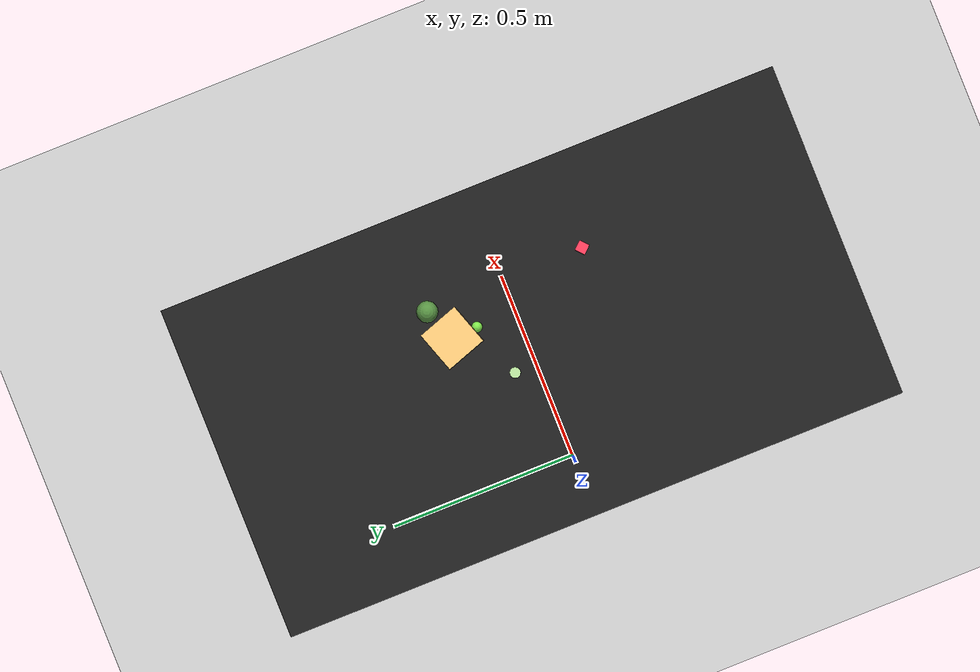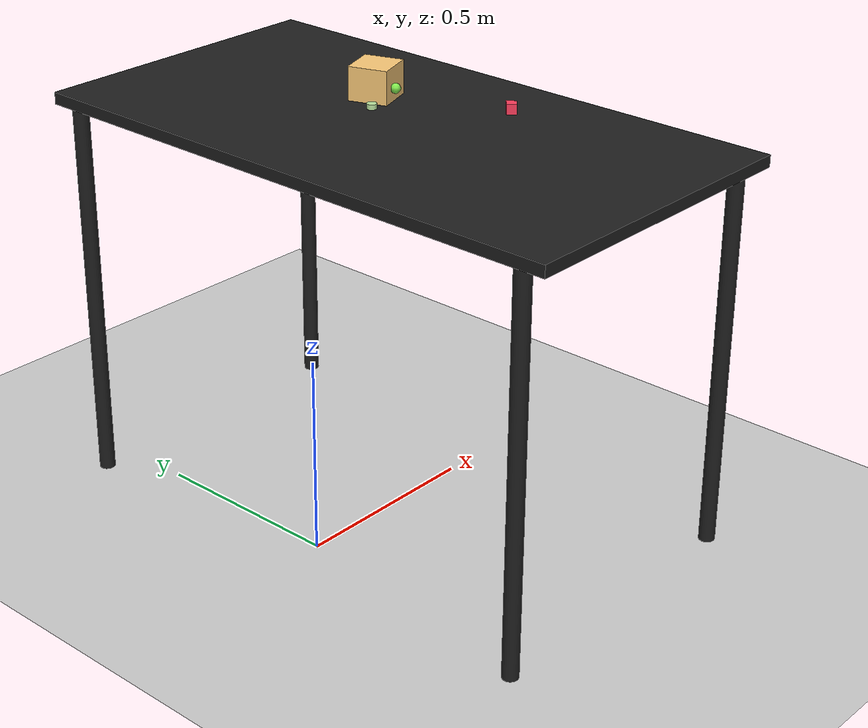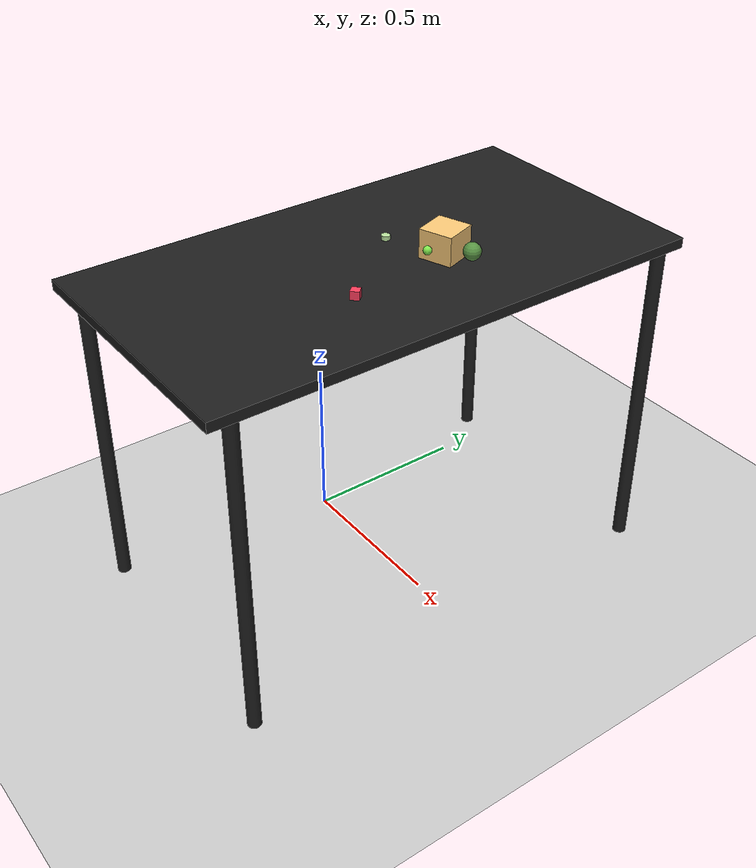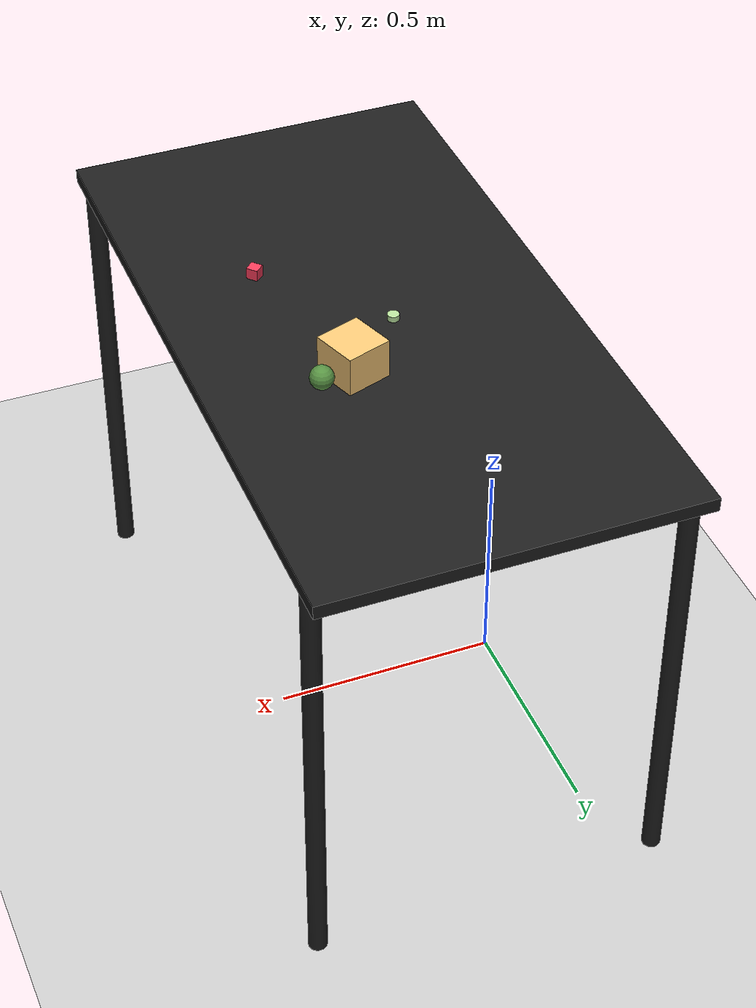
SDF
<?xml version="1.0" ?>
<sdf version="1.6">
  <world name="arm_world">
    <plugin filename="gz-sim-physics-system" name="gz::sim::systems::Physics">
      <engine>
        <filename>libgz-physics-bullet-featherstone-plugin.so</filename>
      </engine>
    </plugin>
    <plugin filename="gz-sim-user-commands-system" name="gz::sim::systems::UserCommands"/>
    <plugin filename="gz-sim-scene-broadcaster-system" name="gz::sim::systems::SceneBroadcaster"/>
    <plugin filename="gz-sim-sensors-system" name="gz::sim::systems::Sensors">
      <render_engine>ogre2</render_engine>
    </plugin>
    <gravity>0.0 0.0 -9.8</gravity>
    <scene>
      <shadows>false</shadows>
    </scene>
    <gui>
      <camera name="user_camera">
        <pose>0.75 -0.75 1.4 0 0.29 2.21</pose>
      </camera>
    </gui>
    <include>
      <uri>https://fuel.gazebosim.org/1.0/OpenRobotics/models/Sun</uri>
    </include>
    <model name="table">
      <static>true</static>
      <include>
        <uri>model://table</uri>
      </include>
      <pose>0.29 0 0 0 0 1.5708</pose>
    </model>
    <model name="ground_plane">
      <static>true</static>
      <link name="link">
        <collision name="collision">
          <geometry>
            <plane>
              <normal>0 0 1</normal>
            </plane>
          </geometry>
          <surface>
            <friction>
              <ode>
                <mu>1.0</mu>
                <mu2>1.0</mu2>
              </ode>
            </friction>
          </surface>
        </collision>
        <visual name="visual">
          <geometry>
            <plane>
              <normal>0 0 1</normal>
              <size>100 100</size>
            </plane>
          </geometry>
          <material>
            <ambient>0.8 0.8 0.8 1</ambient>
            <diffuse>0.8 0.8 0.8 1</diffuse>
            <specular>0.8 0.8 0.8 1</specular>
          </material>
        </visual>
      </link>
    </model>
    <model name="cube_l_0">
      <pose>0.385 0.155 1.05 0 0 0.33</pose>
      <link name="cube_l_0_link">
        <collision name="cube_l_0_collision">
          <geometry>
            <box>
              <size>0.1 0.1 0.1</size>
            </box>
          </geometry>
        </collision>
        <visual name="cube_l_0_visual">
          <geometry>
            <box>
              <size>0.1 0.1 0.1</size>
            </box>
          </geometry>
          <material>
            <ambient>0.98 0.79 0.47 1</ambient>
            <diffuse>0.98 0.79 0.47 1</diffuse>
          </material>
        </visual>
        <velocity_decay>
          <linear>1</linear>
          <angular>1</angular>
        </velocity_decay>
      </link>
    </model>
    <model name="cylinder_s_1">
      <pose>0.26 0.052 1.05 0 0 4.07</pose>
      <link name="cylinder_s_1_link">
        <collision name="cylinder_s_1_collision">
          <geometry>
            <cylinder>
              <radius>0.0125</radius>
              <length>0.0125</length>
            </cylinder>
          </geometry>
        </collision>
        <visual name="cylinder_s_1_visual">
          <geometry>
            <cylinder>
              <radius>0.0125</radius>
              <length>0.0125</length>
            </cylinder>
          </geometry>
          <material>
            <ambient>0.73 0.89 0.62 1</ambient>
            <diffuse>0.73 0.89 0.62 1</diffuse>
          </material>
        </visual>
        <velocity_decay>
          <linear>1</linear>
          <angular>1</angular>
        </velocity_decay>
      </link>
    </model>
    <model name="sphere_s_2">
      <pose>0.388 0.094 1.05 0 0 2.39</pose>
      <link name="sphere_s_2_link">
        <collision name="sphere_s_2_collision">
          <geometry>
            <sphere>
              <radius>0.0125</radius>
            </sphere>
          </geometry>
        </collision>
        <visual name="sphere_s_2_visual">
          <geometry>
            <sphere>
              <radius>0.0125</radius>
            </sphere>
          </geometry>
          <material>
            <ambient>0.49 0.89 0.29 1</ambient>
            <diffuse>0.49 0.89 0.29 1</diffuse>
          </material>
        </visual>
        <velocity_decay>
          <linear>1</linear>
          <angular>1</angular>
        </velocity_decay>
      </link>
    </model>
    <model name="cube_s_3">
      <pose>0.467 -0.194 1.05 0 0 2.3</pose>
      <link name="cube_s_3_link">
        <collision name="cube_s_3_collision">
          <geometry>
            <box>
              <size>0.025 0.025 0.025</size>
            </box>
          </geometry>
        </collision>
        <visual name="cube_s_3_visual">
          <geometry>
            <box>
              <size>0.025 0.025 0.025</size>
            </box>
          </geometry>
          <material>
            <ambient>0.99 0.24 0.36 1</ambient>
            <diffuse>0.99 0.24 0.36 1</diffuse>
          </material>
        </visual>
        <velocity_decay>
          <linear>1</linear>
          <angular>1</angular>
        </velocity_decay>
      </link>
    </model>
    <model name="sphere_m_4">
      <pose>0.462 0.186 1.05 0 0 3.42</pose>
      <link name="sphere_m_4_link">
        <collision name="sphere_m_4_collision">
          <geometry>
            <sphere>
              <radius>0.025</radius>
            </sphere>
          </geometry>
        </collision>
        <visual name="sphere_m_4_visual">
          <geometry>
            <sphere>
              <radius>0.025</radius>
            </sphere>
          </geometry>
          <material>
            <ambient>0.34 0.57 0.26 1</ambient>
            <diffuse>0.34 0.57 0.26 1</diffuse>
          </material>
        </visual>
        <velocity_decay>
          <linear>1</linear>
          <angular>1</angular>
        </velocity_decay>
      </link>
    </model>
  </world>
</sdf>

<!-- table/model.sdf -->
<sdf version="1.5">
  <model name="table">
    <static>true</static>
    <link name="link">
      <collision name="surface">
        <pose>0 0 1.0 0 0 0</pose>
        <geometry>
          <box>
            <size>1.5 0.8 0.03</size>
          </box>
        </geometry>
        <surface>
          <friction>
            <ode>
              <mu>0.6</mu>
              <mu2>0.6</mu2>
            </ode>
          </friction>
        </surface>
      </collision>
      <visual name="surface">
        <pose>0 0 1.0 0 0 0</pose>
        <geometry>
          <box>
            <size>1.5 0.8 0.03</size>
          </box>
        </geometry>
        <material>
          <script>
            <uri>file://media/materials/scripts/gazebo.material</uri>
            <name>Gazebo/Black</name>
          </script>
        </material>
      </visual>
      <collision name="front_left_leg">
        <pose>0.68 0.38 0.5 0 0 0</pose>
        <geometry>
          <cylinder>
            <radius>0.02</radius>
            <length>1.0</length>
          </cylinder>
        </geometry>
      </collision>
      <visual name="front_left_leg">
        <pose>0.68 0.38 0.5 0 0 0</pose>
        <geometry>
          <cylinder>
            <radius>0.02</radius>
            <length>1.0</length>
          </cylinder>
        </geometry>
        <material>
          <script>
            <uri>file://media/materials/scripts/gazebo.material</uri>
            <name>Gazebo/Black</name>
          </script>
        </material>
      </visual>
      <collision name="front_right_leg">
        <pose>0.68 -0.38 0.5 0 0 0</pose>
        <geometry>
          <cylinder>
            <radius>0.02</radius>
            <length>1.0</length>
          </cylinder>
        </geometry>
      </collision>
      <visual name="front_right_leg">
        <pose>0.68 -0.38 0.5 0 0 0</pose>
        <geometry>
          <cylinder>
            <radius>0.02</radius>
            <length>1.0</length>
          </cylinder>
        </geometry>
        <material>
          <script>
            <uri>file://media/materials/scripts/gazebo.material</uri>
            <name>Gazebo/Black</name>
          </script>
        </material>
      </visual>
      <collision name="back_right_leg">
        <pose>-0.68 -0.38 0.5 0 0 0</pose>
        <geometry>
          <cylinder>
            <radius>0.02</radius>
            <length>1.0</length>
          </cylinder>
        </geometry>
      </collision>
      <visual name="back_right_leg">
        <pose>-0.68 -0.38 0.5 0 0 0</pose>
        <geometry>
          <cylinder>
            <radius>0.02</radius>
            <length>1.0</length>
          </cylinder>
        </geometry>
        <material>
          <script>
            <uri>file://media/materials/scripts/gazebo.material</uri>
            <name>Gazebo/Black</name>
          </script>
        </material>
      </visual>
      <collision name="back_left_leg">
        <pose>-0.68 0.38 0.5 0 0 0</pose>
        <geometry>
          <cylinder>
            <radius>0.02</radius>
            <length>1.0</length>
          </cylinder>
        </geometry>
      </collision>
      <visual name="back_left_leg">
        <pose>-0.68 0.38 0.5 0 0 0</pose>
        <geometry>
          <cylinder>
            <radius>0.02</radius>
            <length>1.0</length>
          </cylinder>
        </geometry>
        <material>
          <script>
            <uri>file://media/materials/scripts/gazebo.material</uri>
            <name>Gazebo/Black</name>
          </script>
        </material>
      </visual>
    </link>
  </model>
</sdf>
